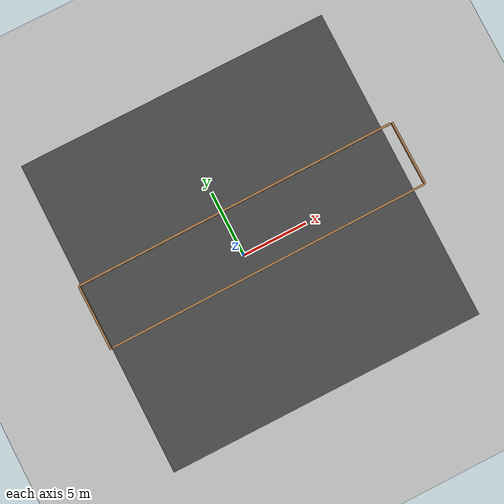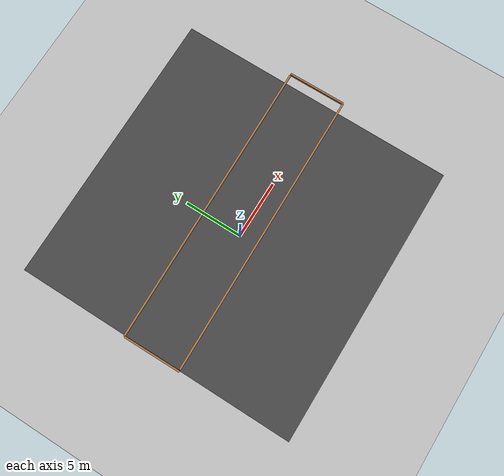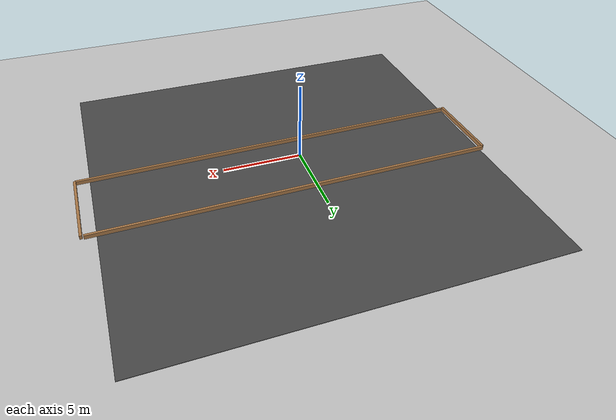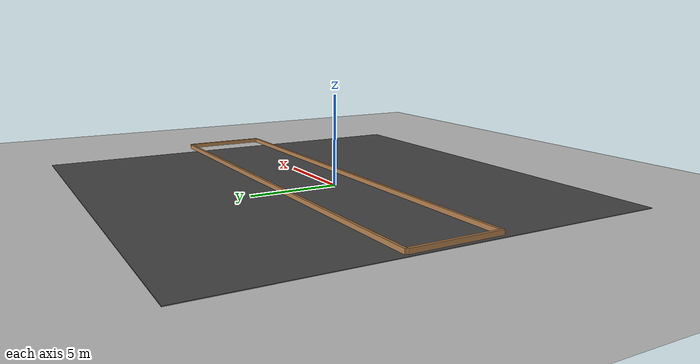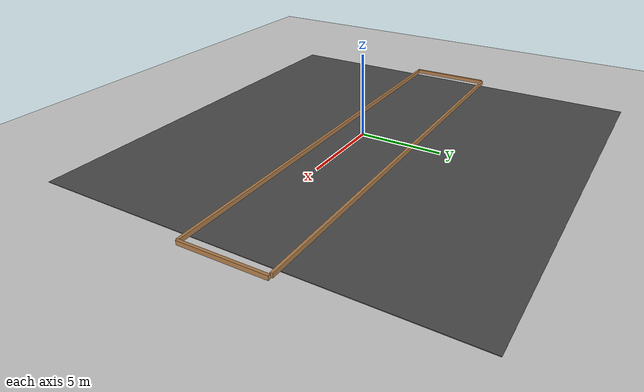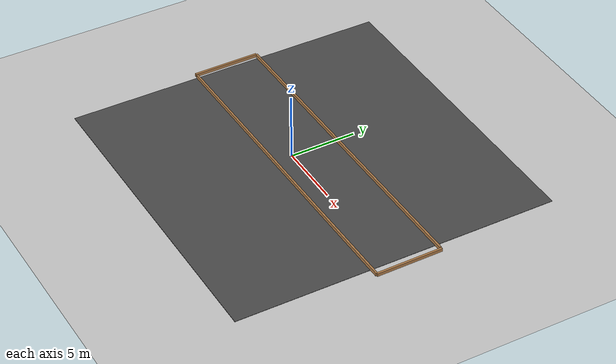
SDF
<sdf version="1.6">
 <world name="default">
  <model name="ground_plane">
   <static>1</static>
   <link name="link">
    <collision name="collision">
     <geometry><plane><normal>0 0 1</normal><size>100 100</size></plane></geometry>
     <surface>
      <contact><collide_bitmask>65535</collide_bitmask></contact>
      <friction><ode><mu>100</mu><mu2>50</mu2></ode></friction>
     </surface>
    </collision>
    <visual name="visual">
     <cast_shadows>0</cast_shadows>
     <geometry><plane><normal>0 0 1</normal><size>100 100</size></plane></geometry>
     <material>
      <script><uri>file://media/materials/scripts/gazebo.material</uri><name>Gazebo/Grey</name></script>
     </material>
    </visual>
   </link>
  </model>
  <model name="asphalt_plane">
   <static>1</static>
   <link name="link">
    <collision name="collision"><geometry><box><size>24.3086 24.3538 0.1</size></box></geometry></collision>
    <visual name="visual">
     <cast_shadows>0</cast_shadows>
     <geometry><box><size>24.3086 24.3538 0.1</size></box></geometry>
     <material>
      <script>
       <uri>model://asphalt_plane/materials/scripts</uri>
       <uri>model://asphalt_plane/materials/textures</uri>
       <name>vrc/asphalt</name>
      </script>
     </material>
    </visual>
   </link>
   <pose>0.83869 0.804741 -0.049 0 -0 0</pose>
  </model>
  <model name="Walls_small">
   <link name="Wall_8">
    <pose>2.47757 0.056889 0 0 0 -1.5708</pose>
    <inertial>
     <mass>1</mass>
     <inertia><ixx>1</ixx><ixy>0</ixy><ixz>0</ixz><iyy>1</iyy><iyz>0</iyz><izz>1</izz></inertia>
    </inertial>
    <visual name="Wall_8_Visual">
     <pose>0 0 0.25 0 -0 0</pose>
     <geometry><box><size>25 0.15 0.25</size></box></geometry>
     <material>
      <script><uri>file://media/materials/scripts/gazebo.material</uri><name>Gazebo/Wood</name></script>
      <ambient>1 1 1 1</ambient>
      <shader type="pixel"><normal_map>__default__</normal_map></shader>
      <diffuse>1 1 1 1</diffuse>
      <specular>0.2 0.2 0.2 1</specular>
      <emissive>0 0 0 1</emissive>
     </material>
     <meta><layer>0</layer></meta>
    </visual>
    <collision name="Wall_8_Collision">
     <pose>0 0 0.25 0 -0 0</pose>
     <geometry><box><size>25 0.15 0.25</size></box></geometry>
     <surface>
      <friction>
       <ode><mu>1</mu><mu2>1</mu2><fdir1>0 0 0</fdir1><slip1>0</slip1><slip2>0</slip2></ode>
       <torsional>
        <coefficient>1</coefficient>
        <patch_radius>0</patch_radius>
        <surface_radius>0</surface_radius>
        <use_patch_radius>1</use_patch_radius>
        <ode><slip>0</slip></ode>
       </torsional>
      </friction>
      <bounce><restitution_coefficient>0</restitution_coefficient><threshold>1e+06</threshold></bounce>
      <contact>
       <collide_without_contact>0</collide_without_contact>
       <collide_without_contact_bitmask>1</collide_without_contact_bitmask>
       <collide_bitmask>1</collide_bitmask>
       <ode>
        <soft_cfm>0</soft_cfm>
        <soft_erp>0.2</soft_erp>
        <kp>1e+13</kp>
        <kd>1</kd>
        <max_vel>0.01</max_vel>
        <min_depth>0</min_depth>
       </ode>
       <bullet>
        <split_impulse>1</split_impulse>
        <split_impulse_penetration_threshold>-0.01</split_impulse_penetration_threshold>
        <soft_cfm>0</soft_cfm>
        <soft_erp>0.2</soft_erp>
        <kp>1e+13</kp>
        <kd>1</kd>
       </bullet>
      </contact>
     </surface>
    </collision>
   </link>
   <link name="Wall_8_clone">
    <pose>-2.50309 -0.064141 0 0 0 -1.5708</pose>
    <inertial>
     <mass>1</mass>
     <inertia><ixx>1</ixx><ixy>0</ixy><ixz>0</ixz><iyy>1</iyy><iyz>0</iyz><izz>1</izz></inertia>
    </inertial>
    <visual name="Wall_8_Visual">
     <pose>0 0 0.25 0 -0 0</pose>
     <geometry><box><size>25 0.15 0.25</size></box></geometry>
     <material>
      <script><uri>file://media/materials/scripts/gazebo.material</uri><name>Gazebo/Wood</name></script>
      <ambient>1 1 1 1</ambient>
      <shader type="pixel"><normal_map>__default__</normal_map></shader>
      <diffuse>1 1 1 1</diffuse>
      <specular>0.2 0.2 0.2 1</specular>
      <emissive>0 0 0 1</emissive>
     </material>
     <meta><layer>0</layer></meta>
    </visual>
    <collision name="Wall_8_Collision">
     <pose>0 0 0.25 0 -0 0</pose>
     <geometry><box><size>25 0.15 0.25</size></box></geometry>
     <surface>
      <friction>
       <ode><mu>1</mu><mu2>1</mu2><fdir1>0 0 0</fdir1><slip1>0</slip1><slip2>0</slip2></ode>
       <torsional>
        <coefficient>1</coefficient>
        <patch_radius>0</patch_radius>
        <surface_radius>0</surface_radius>
        <use_patch_radius>1</use_patch_radius>
        <ode><slip>0</slip></ode>
       </torsional>
      </friction>
      <bounce><restitution_coefficient>0</restitution_coefficient><threshold>1e+06</threshold></bounce>
      <contact>
       <collide_without_contact>0</collide_without_contact>
       <collide_without_contact_bitmask>1</collide_without_contact_bitmask>
       <collide_bitmask>1</collide_bitmask>
       <ode>
        <soft_cfm>0</soft_cfm>
        <soft_erp>0.2</soft_erp>
        <kp>1e+13</kp>
        <kd>1</kd>
        <max_vel>0.01</max_vel>
        <min_depth>0</min_depth>
       </ode>
       <bullet>
        <split_impulse>1</split_impulse>
        <split_impulse_penetration_threshold>-0.01</split_impulse_penetration_threshold>
        <soft_cfm>0</soft_cfm>
        <soft_erp>0.2</soft_erp>
        <kp>1e+13</kp>
        <kd>1</kd>
       </bullet>
      </contact>
     </surface>
    </collision>
   </link>
   <link name="Wall_8_clone_clone">
    <pose>-4.7e-05 -12.5955 0.261789 0 0 -1.5708</pose>
    <inertial>
     <mass>1</mass>
     <inertia><ixx>1</ixx><ixy>0</ixy><ixz>0</ixz><iyy>1</iyy><iyz>0</iyz><izz>1</izz></inertia>
    </inertial>
    <visual name="Wall_8_Visual">
     <pose>0 0 0 0 -0 1.5707</pose>
     <geometry><box><size>5 0.15 0.25</size></box></geometry>
     <material>
      <script><uri>file://media/materials/scripts/gazebo.material</uri><name>Gazebo/Wood</name></script>
      <ambient>1 1 1 1</ambient>
      <shader type="pixel"><normal_map>__default__</normal_map></shader>
      <diffuse>1 1 1 1</diffuse>
      <specular>0.2 0.2 0.2 1</specular>
      <emissive>0 0 0 1</emissive>
     </material>
     <meta><layer>0</layer></meta>
    </visual>
    <collision name="Wall_8_Collision">
     <pose>0 0 0 0 -0 1.5707</pose>
     <geometry><box><size>5 0.15 0.25</size></box></geometry>
     <surface>
      <friction>
       <ode><mu>1</mu><mu2>1</mu2><fdir1>0 0 0</fdir1><slip1>0</slip1><slip2>0</slip2></ode>
       <torsional>
        <coefficient>1</coefficient>
        <patch_radius>0</patch_radius>
        <surface_radius>0</surface_radius>
        <use_patch_radius>1</use_patch_radius>
        <ode><slip>0</slip></ode>
       </torsional>
      </friction>
      <bounce><restitution_coefficient>0</restitution_coefficient><threshold>1e+06</threshold></bounce>
      <contact>
       <collide_without_contact>0</collide_without_contact>
       <collide_without_contact_bitmask>1</collide_without_contact_bitmask>
       <collide_bitmask>1</collide_bitmask>
       <ode>
        <soft_cfm>0</soft_cfm>
        <soft_erp>0.2</soft_erp>
        <kp>1e+13</kp>
        <kd>1</kd>
        <max_vel>0.01</max_vel>
        <min_depth>0</min_depth>
       </ode>
       <bullet>
        <split_impulse>1</split_impulse>
        <split_impulse_penetration_threshold>-0.01</split_impulse_penetration_threshold>
        <soft_cfm>0</soft_cfm>
        <soft_erp>0.2</soft_erp>
        <kp>1e+13</kp>
        <kd>1</kd>
       </bullet>
      </contact>
     </surface>
    </collision>
   </link>
   <link name="Wall_8_clone_clone_clone">
    <pose>-0.061912 12.5852 0.272266 0 0 -1.5708</pose>
    <inertial>
     <mass>1</mass>
     <inertia><ixx>1</ixx><ixy>0</ixy><ixz>0</ixz><iyy>1</iyy><iyz>0</iyz><izz>1</izz></inertia>
    </inertial>
    <visual name="Wall_8_Visual">
     <pose>0 0 0 0 -0 1.5707</pose>
     <geometry><box><size>5 0.15 0.25</size></box></geometry>
     <material>
      <script><uri>file://media/materials/scripts/gazebo.material</uri><name>Gazebo/Wood</name></script>
      <ambient>1 1 1 1</ambient>
      <shader type="pixel"><normal_map>__default__</normal_map></shader>
      <diffuse>1 1 1 1</diffuse>
      <specular>0.2 0.2 0.2 1</specular>
      <emissive>0 0 0 1</emissive>
     </material>
     <meta><layer>0</layer></meta>
    </visual>
    <collision name="Wall_8_Collision">
     <pose>0 0 0 0 -0 1.5707</pose>
     <geometry><box><size>5 0.15 0.25</size></box></geometry>
     <surface>
      <friction>
       <ode><mu>1</mu><mu2>1</mu2><fdir1>0 0 0</fdir1><slip1>0</slip1><slip2>0</slip2></ode>
       <torsional>
        <coefficient>1</coefficient>
        <patch_radius>0</patch_radius>
        <surface_radius>0</surface_radius>
        <use_patch_radius>1</use_patch_radius>
        <ode><slip>0</slip></ode>
       </torsional>
      </friction>
      <bounce><restitution_coefficient>0</restitution_coefficient><threshold>1e+06</threshold></bounce>
      <contact>
       <collide_without_contact>0</collide_without_contact>
       <collide_without_contact_bitmask>1</collide_without_contact_bitmask>
       <collide_bitmask>1</collide_bitmask>
       <ode>
        <soft_cfm>0</soft_cfm>
        <soft_erp>0.2</soft_erp>
        <kp>1e+13</kp>
        <kd>1</kd>
        <max_vel>0.01</max_vel>
        <min_depth>0</min_depth>
       </ode>
       <bullet>
        <split_impulse>1</split_impulse>
        <split_impulse_penetration_threshold>-0.01</split_impulse_penetration_threshold>
        <soft_cfm>0</soft_cfm>
        <soft_erp>0.2</soft_erp>
        <kp>1e+13</kp>
        <kd>1</kd>
       </bullet>
      </contact>
     </surface>
    </collision>
   </link>
   <static>1</static>
   <pose>1.22224 1.01348 0 0 -0 1.58034</pose>
  </model>
 </world>
</sdf>
